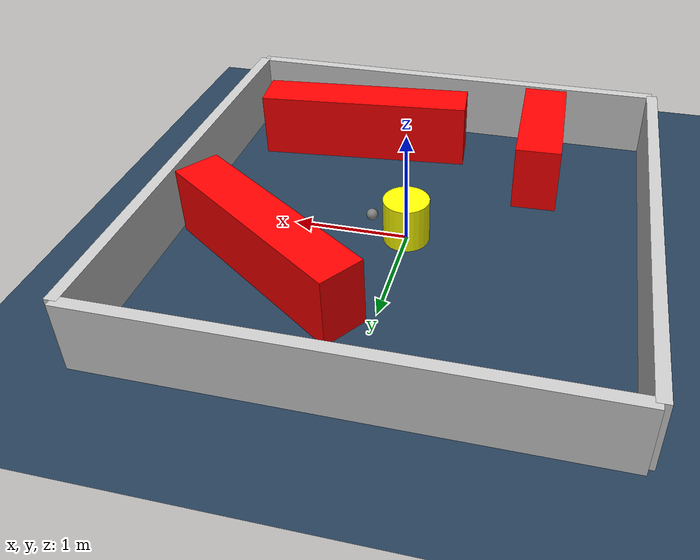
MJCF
<?xml version="1.0" ?>
<mujoco model="generated_environment">
  <option timestep="0.01" integrator="RK4" cone="elliptic"/>
  <default>
    <geom density="1"/>
  </default>
  <asset>
    <texture builtin="gradient" height="3072" rgb1="0.3 0.5 0.7" rgb2="0 0 0" type="skybox" width="512"/>
    <texture builtin="checker" height="300" mark="edge" markrgb="0.8 0.8 0.8" name="groundplane" rgb1="0.2 0.3 0.4" rgb2="0.1 0.2 0.3" type="2d" width="300"/>
    <material name="groundplane" reflectance="0.2" texrepeat="5 5" texture="groundplane" texuniform="true"/>
    <material name="robot" rgba="0.0 1.0 0.0 1"/>
  </asset>
  <worldbody>
    <light dir="0 0 -1" directional="true" pos="0 0 1.5"/>
    <geom condim="4" friction="1.0 0.005 0.001" material="groundplane" name="floor" size="0 0 0.05" type="plane"/>
    <body name="walls">
      <geom name="wall_1" condim="4" pos="-2.0 0.0 0.3" rgba="0.800000011920929 0.800000011920929 0.800000011920929 1.0" size="0.05 2.0 0.3" type="box"/>
      <geom name="wall_2" condim="4" pos="2.0 0.0 0.3" rgba="0.800000011920929 0.800000011920929 0.800000011920929 1.0" size="0.05 2.0 0.3" type="box"/>
      <geom name="wall_3" condim="4" pos="0.0 -2.0 0.3" rgba="0.800000011920929 0.800000011920929 0.800000011920929 1.0" size="2.0 0.05 0.3" type="box"/>
      <geom name="wall_4" condim="4" pos="0.0 2.0 0.3" rgba="0.800000011920929 0.800000011920929 0.800000011920929 1.0" size="2.0 0.05 0.3" type="box"/>
    </body>
    <body name="robot">
      <joint name="joint_x" type="slide" pos="0 0 0" axis="1 0 0"/>
      <joint name="joint_y" type="slide" pos="0 0 0" axis="0 1 0"/>
      <geom name="robot" type="sphere" pos="0.3 0.0 0.2" size="0.05" mass="5." friction="1.0 0.005 0.0001" condim="4" rgba="0.5 0.5 0.5 1.0"/>
      <site name="sensor_ball"/>
    </body>
    <body name="obstacle_movable_1">
      <geom name="obstacle_movable_1" condim="4" pos="0.0 0.0 0.2" euler="0 0 0.0" friction="1.0 0.005 0.001" rgba="1.0 1.0 0.0 1.0" size="0.2 0.2 0.0" type="cylinder" mass="0.1"/>
      <joint type="free"/>
    </body>
    <body name="obstacle_2_static">
      <geom name="obstacle_2_static" condim="4" pos="0.9883556517272665 0.7073382527090384 0.3" euler="0 0 145.65152166214426" friction="1.0 0.005 0.001" rgba="1 0 0 1" size="0.9885124355950639 0.2 0.3" type="box"/>
    </body>
    <body name="obstacle_3_static">
      <geom name="obstacle_3_static" condim="4" pos="0.7327096841417311 -1.4022528281819229 0.3" euler="0 0 5.560084467616395" friction="1.0 0.005 0.001" rgba="1 0 0 1" size="0.9877168378742129 0.2 0.3" type="box"/>
    </body>
    <body name="obstacle_4_static">
      <geom name="obstacle_4_static" condim="4" pos="-1.0031292604296145 -1.2977897793232542 0.3" euler="0 0 271.77282430814455" friction="1.0 0.005 0.001" rgba="1 0 0 1" size="0.6106248101578345 0.2 0.3" type="box"/>
    </body>
  </worldbody>
  <actuator>
    <motor name="actuator_x" joint="joint_x" gear="1" ctrlrange="-1 1"/>
    <motor name="actuator_y" joint="joint_y" gear="1" ctrlrange="-1 1"/>
  </actuator>
</mujoco>
